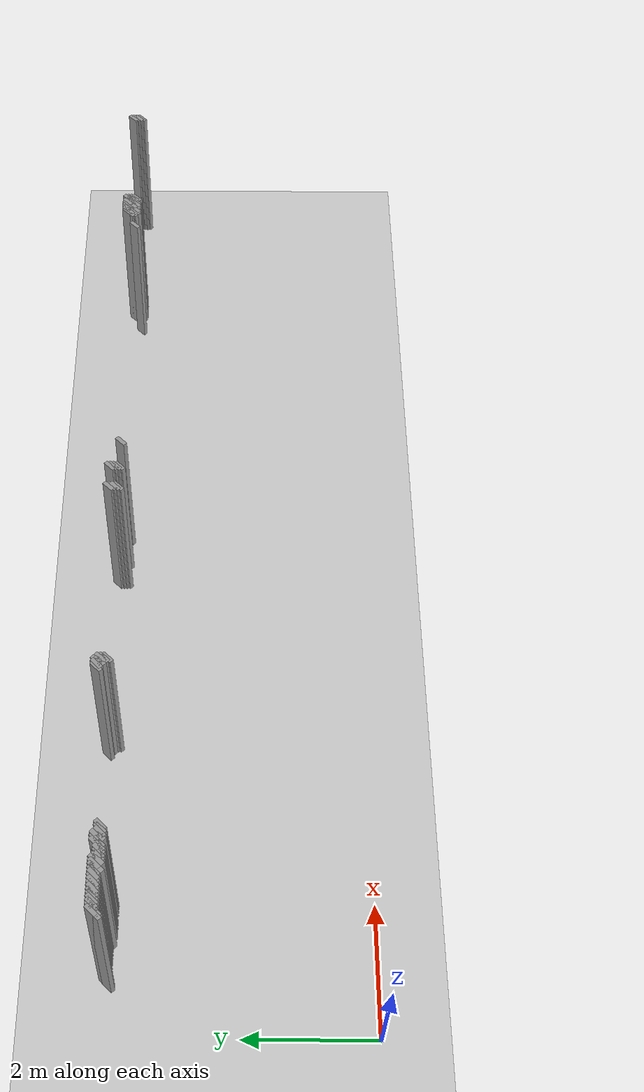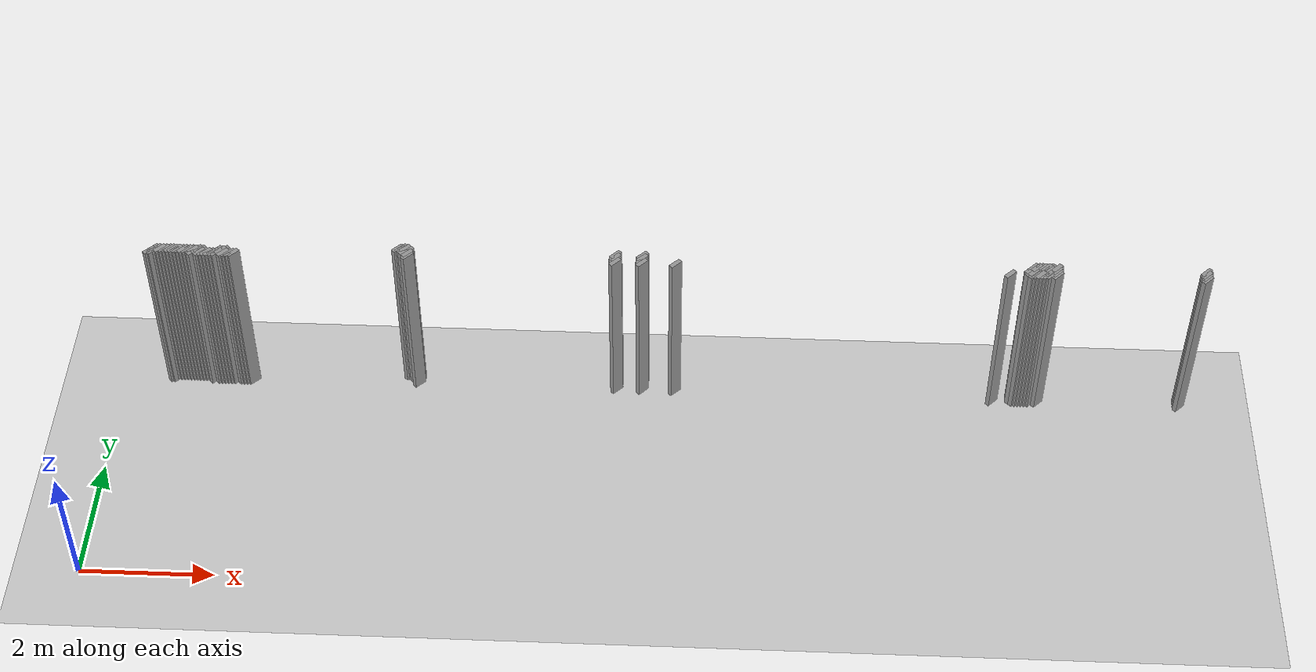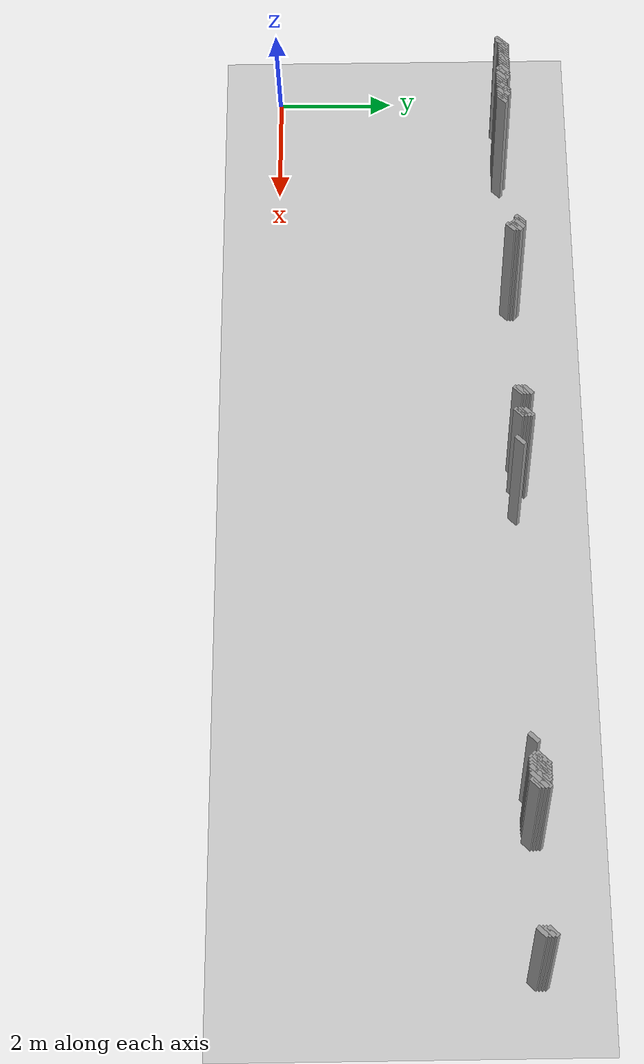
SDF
<sdf version="1.5">
 <world name="default">
  <include><uri>model://ground_plane</uri></include>
  <include><uri>model://sun</uri></include>
  <model name="grey_wall_2147">
   <static>1</static>
   <link name="link">
    <pose>4.45 4.1000000000000005  1.4 0 0 -0.7853981633974483</pose>
    <collision name="collision">
     <geometry><box><size>0.07071067811865576 .2  2.8</size></box></geometry>
    </collision>
    <visual name="visual">
     <cast_shadows>0</cast_shadows>
     <geometry><box><size>0.07071067811865576 .2  2.8</size></box></geometry>
     <material>
      <script>
       <uri>model://grey_wall/materials/scripts</uri>
       <uri>model://grey_wall/materials/textures</uri>
       <name>vrc/grey_wall</name>
      </script>
     </material>
    </visual>
   </link>
  </model>
  <model name="grey_wall_2148">
   <static>1</static>
   <link name="link">
    <pose>4.5 4.1000000000000005  1.4 0 0 -0.7853981633974483</pose>
    <collision name="collision">
     <geometry><box><size>0.07071067811865576 .2  2.8</size></box></geometry>
    </collision>
    <visual name="visual">
     <cast_shadows>0</cast_shadows>
     <geometry><box><size>0.07071067811865576 .2  2.8</size></box></geometry>
     <material>
      <script>
       <uri>model://grey_wall/materials/scripts</uri>
       <uri>model://grey_wall/materials/textures</uri>
       <name>vrc/grey_wall</name>
      </script>
     </material>
    </visual>
   </link>
  </model>
  <model name="grey_wall_2149">
   <static>1</static>
   <link name="link">
    <pose>4.55 4.1000000000000005  1.4 0 0 -0.7853981633974483</pose>
    <collision name="collision">
     <geometry><box><size>0.07071067811865576 .2  2.8</size></box></geometry>
    </collision>
    <visual name="visual">
     <cast_shadows>0</cast_shadows>
     <geometry><box><size>0.07071067811865576 .2  2.8</size></box></geometry>
     <material>
      <script>
       <uri>model://grey_wall/materials/scripts</uri>
       <uri>model://grey_wall/materials/textures</uri>
       <name>vrc/grey_wall</name>
      </script>
     </material>
    </visual>
   </link>
  </model>
  <model name="grey_wall_2150">
   <static>1</static>
   <link name="link">
    <pose>7.7 4.1000000000000005  1.4 0 0 -0.7853981633974483</pose>
    <collision name="collision">
     <geometry><box><size>0.07071067811865576 .2  2.8</size></box></geometry>
    </collision>
    <visual name="visual">
     <cast_shadows>0</cast_shadows>
     <geometry><box><size>0.07071067811865576 .2  2.8</size></box></geometry>
     <material>
      <script>
       <uri>model://grey_wall/materials/scripts</uri>
       <uri>model://grey_wall/materials/textures</uri>
       <name>vrc/grey_wall</name>
      </script>
     </material>
    </visual>
   </link>
  </model>
  <model name="grey_wall_2151">
   <static>1</static>
   <link name="link">
    <pose>8.1 4.1000000000000005  1.4 0 0 -0.7853981633974483</pose>
    <collision name="collision">
     <geometry><box><size>0.07071067811865576 .2  2.8</size></box></geometry>
    </collision>
    <visual name="visual">
     <cast_shadows>0</cast_shadows>
     <geometry><box><size>0.07071067811865576 .2  2.8</size></box></geometry>
     <material>
      <script>
       <uri>model://grey_wall/materials/scripts</uri>
       <uri>model://grey_wall/materials/textures</uri>
       <name>vrc/grey_wall</name>
      </script>
     </material>
    </visual>
   </link>
  </model>
  <model name="grey_wall_2152">
   <static>1</static>
   <link name="link">
    <pose>13.9 4.1000000000000005  1.4 0 0 -0.7853981633974483</pose>
    <collision name="collision">
     <geometry><box><size>0.07071067811865576 .2  2.8</size></box></geometry>
    </collision>
    <visual name="visual">
     <cast_shadows>0</cast_shadows>
     <geometry><box><size>0.07071067811865576 .2  2.8</size></box></geometry>
     <material>
      <script>
       <uri>model://grey_wall/materials/scripts</uri>
       <uri>model://grey_wall/materials/textures</uri>
       <name>vrc/grey_wall</name>
      </script>
     </material>
    </visual>
   </link>
  </model>
  <model name="grey_wall_2153">
   <static>1</static>
   <link name="link">
    <pose>13.950000000000001 4.1000000000000005  1.4 0 0 -0.7853981633974483</pose>
    <collision name="collision">
     <geometry><box><size>0.07071067811865576 .2  2.8</size></box></geometry>
    </collision>
    <visual name="visual">
     <cast_shadows>0</cast_shadows>
     <geometry><box><size>0.07071067811865576 .2  2.8</size></box></geometry>
     <material>
      <script>
       <uri>model://grey_wall/materials/scripts</uri>
       <uri>model://grey_wall/materials/textures</uri>
       <name>vrc/grey_wall</name>
      </script>
     </material>
    </visual>
   </link>
  </model>
  <model name="grey_wall_2154">
   <static>1</static>
   <link name="link">
    <pose>14.0 4.1000000000000005  1.4 0 0 -0.7853981633974483</pose>
    <collision name="collision">
     <geometry><box><size>0.07071067811865576 .2  2.8</size></box></geometry>
    </collision>
    <visual name="visual">
     <cast_shadows>0</cast_shadows>
     <geometry><box><size>0.07071067811865576 .2  2.8</size></box></geometry>
     <material>
      <script>
       <uri>model://grey_wall/materials/scripts</uri>
       <uri>model://grey_wall/materials/textures</uri>
       <name>vrc/grey_wall</name>
      </script>
     </material>
    </visual>
   </link>
  </model>
  <model name="grey_wall_2155">
   <static>1</static>
   <link name="link">
    <pose>14.05 4.1000000000000005  1.4 0 0 -0.7853981633974483</pose>
    <collision name="collision">
     <geometry><box><size>0.07071067811865576 .2  2.8</size></box></geometry>
    </collision>
    <visual name="visual">
     <cast_shadows>0</cast_shadows>
     <geometry><box><size>0.07071067811865576 .2  2.8</size></box></geometry>
     <material>
      <script>
       <uri>model://grey_wall/materials/scripts</uri>
       <uri>model://grey_wall/materials/textures</uri>
       <name>vrc/grey_wall</name>
      </script>
     </material>
    </visual>
   </link>
  </model>
  <model name="grey_wall_2156">
   <static>1</static>
   <link name="link">
    <pose>14.100000000000001 4.1000000000000005  1.4 0 0 -0.7853981633974483</pose>
    <collision name="collision">
     <geometry><box><size>0.07071067811865576 .2  2.8</size></box></geometry>
    </collision>
    <visual name="visual">
     <cast_shadows>0</cast_shadows>
     <geometry><box><size>0.07071067811865576 .2  2.8</size></box></geometry>
     <material>
      <script>
       <uri>model://grey_wall/materials/scripts</uri>
       <uri>model://grey_wall/materials/textures</uri>
       <name>vrc/grey_wall</name>
      </script>
     </material>
    </visual>
   </link>
  </model>
  <model name="grey_wall_2157">
   <static>1</static>
   <link name="link">
    <pose>14.15 4.1000000000000005  1.4 0 0 -0.7853981633974483</pose>
    <collision name="collision">
     <geometry><box><size>0.07071067811865576 .2  2.8</size></box></geometry>
    </collision>
    <visual name="visual">
     <cast_shadows>0</cast_shadows>
     <geometry><box><size>0.07071067811865576 .2  2.8</size></box></geometry>
     <material>
      <script>
       <uri>model://grey_wall/materials/scripts</uri>
       <uri>model://grey_wall/materials/textures</uri>
       <name>vrc/grey_wall</name>
      </script>
     </material>
    </visual>
   </link>
  </model>
  <model name="grey_wall_2158">
   <static>1</static>
   <link name="link">
    <pose>14.25 4.1000000000000005  1.4 0 0 -0.7853981633974483</pose>
    <collision name="collision">
     <geometry><box><size>0.07071067811865576 .2  2.8</size></box></geometry>
    </collision>
    <visual name="visual">
     <cast_shadows>0</cast_shadows>
     <geometry><box><size>0.07071067811865576 .2  2.8</size></box></geometry>
     <material>
      <script>
       <uri>model://grey_wall/materials/scripts</uri>
       <uri>model://grey_wall/materials/textures</uri>
       <name>vrc/grey_wall</name>
      </script>
     </material>
    </visual>
   </link>
  </model>
  <model name="grey_wall_2159">
   <static>1</static>
   <link name="link">
    <pose>16.45 4.1000000000000005  1.4 0 0 -0.7853981633974838</pose>
    <collision name="collision">
     <geometry><box><size>0.07071067811865325 .2  2.8</size></box></geometry>
    </collision>
    <visual name="visual">
     <cast_shadows>0</cast_shadows>
     <geometry><box><size>0.07071067811865325 .2  2.8</size></box></geometry>
     <material>
      <script>
       <uri>model://grey_wall/materials/scripts</uri>
       <uri>model://grey_wall/materials/textures</uri>
       <name>vrc/grey_wall</name>
      </script>
     </material>
    </visual>
   </link>
  </model>
  <model name="grey_wall_2160">
   <static>1</static>
   <link name="link">
    <pose>4.55 4.05  1.4 0 0 -0.7853981633974483</pose>
    <collision name="collision">
     <geometry><box><size>0.07071067811865576 .2  2.8</size></box></geometry>
    </collision>
    <visual name="visual">
     <cast_shadows>0</cast_shadows>
     <geometry><box><size>0.07071067811865576 .2  2.8</size></box></geometry>
     <material>
      <script>
       <uri>model://grey_wall/materials/scripts</uri>
       <uri>model://grey_wall/materials/textures</uri>
       <name>vrc/grey_wall</name>
      </script>
     </material>
    </visual>
   </link>
  </model>
  <model name="grey_wall_2161">
   <static>1</static>
   <link name="link">
    <pose>4.6000000000000005 4.05  1.4 0 0 -0.7853981633974483</pose>
    <collision name="collision">
     <geometry><box><size>0.07071067811865576 .2  2.8</size></box></geometry>
    </collision>
    <visual name="visual">
     <cast_shadows>0</cast_shadows>
     <geometry><box><size>0.07071067811865576 .2  2.8</size></box></geometry>
     <material>
      <script>
       <uri>model://grey_wall/materials/scripts</uri>
       <uri>model://grey_wall/materials/textures</uri>
       <name>vrc/grey_wall</name>
      </script>
     </material>
    </visual>
   </link>
  </model>
  <model name="grey_wall_2162">
   <static>1</static>
   <link name="link">
    <pose>7.7 4.05  1.4 0 0 -0.7853981633974483</pose>
    <collision name="collision">
     <geometry><box><size>0.07071067811865576 .2  2.8</size></box></geometry>
    </collision>
    <visual name="visual">
     <cast_shadows>0</cast_shadows>
     <geometry><box><size>0.07071067811865576 .2  2.8</size></box></geometry>
     <material>
      <script>
       <uri>model://grey_wall/materials/scripts</uri>
       <uri>model://grey_wall/materials/textures</uri>
       <name>vrc/grey_wall</name>
      </script>
     </material>
    </visual>
   </link>
  </model>
  <model name="grey_wall_2163">
   <static>1</static>
   <link name="link">
    <pose>8.1 4.05  1.4 0 0 -0.7853981633974483</pose>
    <collision name="collision">
     <geometry><box><size>0.07071067811865576 .2  2.8</size></box></geometry>
    </collision>
    <visual name="visual">
     <cast_shadows>0</cast_shadows>
     <geometry><box><size>0.07071067811865576 .2  2.8</size></box></geometry>
     <material>
      <script>
       <uri>model://grey_wall/materials/scripts</uri>
       <uri>model://grey_wall/materials/textures</uri>
       <name>vrc/grey_wall</name>
      </script>
     </material>
    </visual>
   </link>
  </model>
  <model name="grey_wall_2164">
   <static>1</static>
   <link name="link">
    <pose>13.850000000000001 4.05  1.4 0 0 -0.7853981633974483</pose>
    <collision name="collision">
     <geometry><box><size>0.07071067811865576 .2  2.8</size></box></geometry>
    </collision>
    <visual name="visual">
     <cast_shadows>0</cast_shadows>
     <geometry><box><size>0.07071067811865576 .2  2.8</size></box></geometry>
     <material>
      <script>
       <uri>model://grey_wall/materials/scripts</uri>
       <uri>model://grey_wall/materials/textures</uri>
       <name>vrc/grey_wall</name>
      </script>
     </material>
    </visual>
   </link>
  </model>
  <model name="grey_wall_2165">
   <static>1</static>
   <link name="link">
    <pose>13.9 4.05  1.4 0 0 -0.7853981633974483</pose>
    <collision name="collision">
     <geometry><box><size>0.07071067811865576 .2  2.8</size></box></geometry>
    </collision>
    <visual name="visual">
     <cast_shadows>0</cast_shadows>
     <geometry><box><size>0.07071067811865576 .2  2.8</size></box></geometry>
     <material>
      <script>
       <uri>model://grey_wall/materials/scripts</uri>
       <uri>model://grey_wall/materials/textures</uri>
       <name>vrc/grey_wall</name>
      </script>
     </material>
    </visual>
   </link>
  </model>
  <model name="grey_wall_2166">
   <static>1</static>
   <link name="link">
    <pose>14.15 4.05  1.4 0 0 -0.7853981633974483</pose>
    <collision name="collision">
     <geometry><box><size>0.07071067811865576 .2  2.8</size></box></geometry>
    </collision>
    <visual name="visual">
     <cast_shadows>0</cast_shadows>
     <geometry><box><size>0.07071067811865576 .2  2.8</size></box></geometry>
     <material>
      <script>
       <uri>model://grey_wall/materials/scripts</uri>
       <uri>model://grey_wall/materials/textures</uri>
       <name>vrc/grey_wall</name>
      </script>
     </material>
    </visual>
   </link>
  </model>
  <model name="grey_wall_2167">
   <static>1</static>
   <link name="link">
    <pose>14.25 4.05  1.4 0 0 -0.7853981633974483</pose>
    <collision name="collision">
     <geometry><box><size>0.07071067811865576 .2  2.8</size></box></geometry>
    </collision>
    <visual name="visual">
     <cast_shadows>0</cast_shadows>
     <geometry><box><size>0.07071067811865576 .2  2.8</size></box></geometry>
     <material>
      <script>
       <uri>model://grey_wall/materials/scripts</uri>
       <uri>model://grey_wall/materials/textures</uri>
       <name>vrc/grey_wall</name>
      </script>
     </material>
    </visual>
   </link>
  </model>
  <model name="grey_wall_2168">
   <static>1</static>
   <link name="link">
    <pose>16.45 4.05  1.4 0 0 -0.7853981633974838</pose>
    <collision name="collision">
     <geometry><box><size>0.07071067811865325 .2  2.8</size></box></geometry>
    </collision>
    <visual name="visual">
     <cast_shadows>0</cast_shadows>
     <geometry><box><size>0.07071067811865325 .2  2.8</size></box></geometry>
     <material>
      <script>
       <uri>model://grey_wall/materials/scripts</uri>
       <uri>model://grey_wall/materials/textures</uri>
       <name>vrc/grey_wall</name>
      </script>
     </material>
    </visual>
   </link>
  </model>
  <model name="grey_wall_2169">
   <static>1</static>
   <link name="link">
    <pose>4.6000000000000005 4.0  1.4 0 0 -0.7853981633974438</pose>
    <collision name="collision">
     <geometry><box><size>0.07071067811865545 .2  2.8</size></box></geometry>
    </collision>
    <visual name="visual">
     <cast_shadows>0</cast_shadows>
     <geometry><box><size>0.07071067811865545 .2  2.8</size></box></geometry>
     <material>
      <script>
       <uri>model://grey_wall/materials/scripts</uri>
       <uri>model://grey_wall/materials/textures</uri>
       <name>vrc/grey_wall</name>
      </script>
     </material>
    </visual>
   </link>
  </model>
  <model name="grey_wall_2170">
   <static>1</static>
   <link name="link">
    <pose>7.7 4.0  1.4 0 0 -0.7853981633974438</pose>
    <collision name="collision">
     <geometry><box><size>0.07071067811865545 .2  2.8</size></box></geometry>
    </collision>
    <visual name="visual">
     <cast_shadows>0</cast_shadows>
     <geometry><box><size>0.07071067811865545 .2  2.8</size></box></geometry>
     <material>
      <script>
       <uri>model://grey_wall/materials/scripts</uri>
       <uri>model://grey_wall/materials/textures</uri>
       <name>vrc/grey_wall</name>
      </script>
     </material>
    </visual>
   </link>
  </model>
  <model name="grey_wall_2171">
   <static>1</static>
   <link name="link">
    <pose>8.1 4.0  1.4 0 0 -0.7853981633974438</pose>
    <collision name="collision">
     <geometry><box><size>0.07071067811865545 .2  2.8</size></box></geometry>
    </collision>
    <visual name="visual">
     <cast_shadows>0</cast_shadows>
     <geometry><box><size>0.07071067811865545 .2  2.8</size></box></geometry>
     <material>
      <script>
       <uri>model://grey_wall/materials/scripts</uri>
       <uri>model://grey_wall/materials/textures</uri>
       <name>vrc/grey_wall</name>
      </script>
     </material>
    </visual>
   </link>
  </model>
  <model name="grey_wall_2172">
   <static>1</static>
   <link name="link">
    <pose>13.850000000000001 4.0  1.4 0 0 -0.7853981633974438</pose>
    <collision name="collision">
     <geometry><box><size>0.07071067811865545 .2  2.8</size></box></geometry>
    </collision>
    <visual name="visual">
     <cast_shadows>0</cast_shadows>
     <geometry><box><size>0.07071067811865545 .2  2.8</size></box></geometry>
     <material>
      <script>
       <uri>model://grey_wall/materials/scripts</uri>
       <uri>model://grey_wall/materials/textures</uri>
       <name>vrc/grey_wall</name>
      </script>
     </material>
    </visual>
   </link>
  </model>
  <model name="grey_wall_2173">
   <static>1</static>
   <link name="link">
    <pose>13.9 4.0  1.4 0 0 -0.7853981633974438</pose>
    <collision name="collision">
     <geometry><box><size>0.07071067811865545 .2  2.8</size></box></geometry>
    </collision>
    <visual name="visual">
     <cast_shadows>0</cast_shadows>
     <geometry><box><size>0.07071067811865545 .2  2.8</size></box></geometry>
     <material>
      <script>
       <uri>model://grey_wall/materials/scripts</uri>
       <uri>model://grey_wall/materials/textures</uri>
       <name>vrc/grey_wall</name>
      </script>
     </material>
    </visual>
   </link>
  </model>
  <model name="grey_wall_2174">
   <static>1</static>
   <link name="link">
    <pose>14.15 4.0  1.4 0 0 -0.7853981633974438</pose>
    <collision name="collision">
     <geometry><box><size>0.07071067811865545 .2  2.8</size></box></geometry>
    </collision>
    <visual name="visual">
     <cast_shadows>0</cast_shadows>
     <geometry><box><size>0.07071067811865545 .2  2.8</size></box></geometry>
     <material>
      <script>
       <uri>model://grey_wall/materials/scripts</uri>
       <uri>model://grey_wall/materials/textures</uri>
       <name>vrc/grey_wall</name>
      </script>
     </material>
    </visual>
   </link>
  </model>
  <model name="grey_wall_2175">
   <static>1</static>
   <link name="link">
    <pose>14.25 4.0  1.4 0 0 -0.7853981633974438</pose>
    <collision name="collision">
     <geometry><box><size>0.07071067811865545 .2  2.8</size></box></geometry>
    </collision>
    <visual name="visual">
     <cast_shadows>0</cast_shadows>
     <geometry><box><size>0.07071067811865545 .2  2.8</size></box></geometry>
     <material>
      <script>
       <uri>model://grey_wall/materials/scripts</uri>
       <uri>model://grey_wall/materials/textures</uri>
       <name>vrc/grey_wall</name>
      </script>
     </material>
    </visual>
   </link>
  </model>
  <model name="grey_wall_2176">
   <static>1</static>
   <link name="link">
    <pose>16.45 4.0  1.4 0 0 -0.7853981633974794</pose>
    <collision name="collision">
     <geometry><box><size>0.07071067811865293 .2  2.8</size></box></geometry>
    </collision>
    <visual name="visual">
     <cast_shadows>0</cast_shadows>
     <geometry><box><size>0.07071067811865293 .2  2.8</size></box></geometry>
     <material>
      <script>
       <uri>model://grey_wall/materials/scripts</uri>
       <uri>model://grey_wall/materials/textures</uri>
       <name>vrc/grey_wall</name>
      </script>
     </material>
    </visual>
   </link>
  </model>
  <model name="grey_wall_2177">
   <static>1</static>
   <link name="link">
    <pose>0.8 3.95  1.4 0 0 -0.7853981633974461</pose>
    <collision name="collision">
     <geometry><box><size>0.07071067811865465 .2  2.8</size></box></geometry>
    </collision>
    <visual name="visual">
     <cast_shadows>0</cast_shadows>
     <geometry><box><size>0.07071067811865465 .2  2.8</size></box></geometry>
     <material>
      <script>
       <uri>model://grey_wall/materials/scripts</uri>
       <uri>model://grey_wall/materials/textures</uri>
       <name>vrc/grey_wall</name>
      </script>
     </material>
    </visual>
   </link>
  </model>
  <model name="grey_wall_2178">
   <static>1</static>
   <link name="link">
    <pose>0.8500000000000001 3.95  1.4 0 0 -0.7853981633974461</pose>
    <collision name="collision">
     <geometry><box><size>0.07071067811865465 .2  2.8</size></box></geometry>
    </collision>
    <visual name="visual">
     <cast_shadows>0</cast_shadows>
     <geometry><box><size>0.07071067811865465 .2  2.8</size></box></geometry>
     <material>
      <script>
       <uri>model://grey_wall/materials/scripts</uri>
       <uri>model://grey_wall/materials/textures</uri>
       <name>vrc/grey_wall</name>
      </script>
     </material>
    </visual>
   </link>
  </model>
  <model name="grey_wall_2179">
   <static>1</static>
   <link name="link">
    <pose>0.9 3.95  1.4 0 0 -0.7853981633974461</pose>
    <collision name="collision">
     <geometry><box><size>0.07071067811865465 .2  2.8</size></box></geometry>
    </collision>
    <visual name="visual">
     <cast_shadows>0</cast_shadows>
     <geometry><box><size>0.07071067811865465 .2  2.8</size></box></geometry>
     <material>
      <script>
       <uri>model://grey_wall/materials/scripts</uri>
       <uri>model://grey_wall/materials/textures</uri>
       <name>vrc/grey_wall</name>
      </script>
     </material>
    </visual>
   </link>
  </model>
  <model name="grey_wall_2180">
   <static>1</static>
   <link name="link">
    <pose>0.9500000000000001 3.95  1.4 0 0 -0.7853981633974461</pose>
    <collision name="collision">
     <geometry><box><size>0.07071067811865465 .2  2.8</size></box></geometry>
    </collision>
    <visual name="visual">
     <cast_shadows>0</cast_shadows>
     <geometry><box><size>0.07071067811865465 .2  2.8</size></box></geometry>
     <material>
      <script>
       <uri>model://grey_wall/materials/scripts</uri>
       <uri>model://grey_wall/materials/textures</uri>
       <name>vrc/grey_wall</name>
      </script>
     </material>
    </visual>
   </link>
  </model>
  <model name="grey_wall_2181">
   <static>1</static>
   <link name="link">
    <pose>1.0 3.95  1.4 0 0 -0.7853981633974472</pose>
    <collision name="collision">
     <geometry><box><size>0.07071067811865459 .2  2.8</size></box></geometry>
    </collision>
    <visual name="visual">
     <cast_shadows>0</cast_shadows>
     <geometry><box><size>0.07071067811865459 .2  2.8</size></box></geometry>
     <material>
      <script>
       <uri>model://grey_wall/materials/scripts</uri>
       <uri>model://grey_wall/materials/textures</uri>
       <name>vrc/grey_wall</name>
      </script>
     </material>
    </visual>
   </link>
  </model>
  <model name="grey_wall_2182">
   <static>1</static>
   <link name="link">
    <pose>1.05 3.95  1.4 0 0 -0.7853981633974483</pose>
    <collision name="collision">
     <geometry><box><size>0.0707106781186545 .2  2.8</size></box></geometry>
    </collision>
    <visual name="visual">
     <cast_shadows>0</cast_shadows>
     <geometry><box><size>0.0707106781186545 .2  2.8</size></box></geometry>
     <material>
      <script>
       <uri>model://grey_wall/materials/scripts</uri>
       <uri>model://grey_wall/materials/textures</uri>
       <name>vrc/grey_wall</name>
      </script>
     </material>
    </visual>
   </link>
  </model>
  <model name="grey_wall_2183">
   <static>1</static>
   <link name="link">
    <pose>1.1 3.95  1.4 0 0 -0.7853981633974483</pose>
    <collision name="collision">
     <geometry><box><size>0.0707106781186545 .2  2.8</size></box></geometry>
    </collision>
    <visual name="visual">
     <cast_shadows>0</cast_shadows>
     <geometry><box><size>0.0707106781186545 .2  2.8</size></box></geometry>
     <material>
      <script>
       <uri>model://grey_wall/materials/scripts</uri>
       <uri>model://grey_wall/materials/textures</uri>
       <name>vrc/grey_wall</name>
      </script>
     </material>
    </visual>
   </link>
  </model>
  <model name="grey_wall_2184">
   <static>1</static>
   <link name="link">
    <pose>1.1500000000000001 3.95  1.4 0 0 -0.7853981633974483</pose>
    <collision name="collision">
     <geometry><box><size>0.0707106781186545 .2  2.8</size></box></geometry>
    </collision>
    <visual name="visual">
     <cast_shadows>0</cast_shadows>
     <geometry><box><size>0.0707106781186545 .2  2.8</size></box></geometry>
     <material>
      <script>
       <uri>model://grey_wall/materials/scripts</uri>
       <uri>model://grey_wall/materials/textures</uri>
       <name>vrc/grey_wall</name>
      </script>
     </material>
    </visual>
   </link>
  </model>
  <model name="grey_wall_2185">
   <static>1</static>
   <link name="link">
    <pose>1.2000000000000002 3.95  1.4 0 0 -0.7853981633974483</pose>
    <collision name="collision">
     <geometry><box><size>0.0707106781186545 .2  2.8</size></box></geometry>
    </collision>
    <visual name="visual">
     <cast_shadows>0</cast_shadows>
     <geometry><box><size>0.0707106781186545 .2  2.8</size></box></geometry>
     <material>
      <script>
       <uri>model://grey_wall/materials/scripts</uri>
       <uri>model://grey_wall/materials/textures</uri>
       <name>vrc/grey_wall</name>
      </script>
     </material>
    </visual>
   </link>
  </model>
  <model name="grey_wall_2186">
   <static>1</static>
   <link name="link">
    <pose>1.25 3.95  1.4 0 0 -0.7853981633974483</pose>
    <collision name="collision">
     <geometry><box><size>0.0707106781186545 .2  2.8</size></box></geometry>
    </collision>
    <visual name="visual">
     <cast_shadows>0</cast_shadows>
     <geometry><box><size>0.0707106781186545 .2  2.8</size></box></geometry>
     <material>
      <script>
       <uri>model://grey_wall/materials/scripts</uri>
       <uri>model://grey_wall/materials/textures</uri>
       <name>vrc/grey_wall</name>
      </script>
     </material>
    </visual>
   </link>
  </model>
  <model name="grey_wall_2187">
   <static>1</static>
   <link name="link">
    <pose>1.3 3.95  1.4 0 0 -0.7853981633974483</pose>
    <collision name="collision">
     <geometry><box><size>0.0707106781186545 .2  2.8</size></box></geometry>
    </collision>
    <visual name="visual">
     <cast_shadows>0</cast_shadows>
     <geometry><box><size>0.0707106781186545 .2  2.8</size></box></geometry>
     <material>
      <script>
       <uri>model://grey_wall/materials/scripts</uri>
       <uri>model://grey_wall/materials/textures</uri>
       <name>vrc/grey_wall</name>
      </script>
     </material>
    </visual>
   </link>
  </model>
  <model name="grey_wall_2188">
   <static>1</static>
   <link name="link">
    <pose>1.35 3.95  1.4 0 0 -0.7853981633974483</pose>
    <collision name="collision">
     <geometry><box><size>0.0707106781186545 .2  2.8</size></box></geometry>
    </collision>
    <visual name="visual">
     <cast_shadows>0</cast_shadows>
     <geometry><box><size>0.0707106781186545 .2  2.8</size></box></geometry>
     <material>
      <script>
       <uri>model://grey_wall/materials/scripts</uri>
       <uri>model://grey_wall/materials/textures</uri>
       <name>vrc/grey_wall</name>
      </script>
     </material>
    </visual>
   </link>
  </model>
  <model name="grey_wall_2189">
   <static>1</static>
   <link name="link">
    <pose>1.4000000000000001 3.95  1.4 0 0 -0.7853981633974483</pose>
    <collision name="collision">
     <geometry><box><size>0.0707106781186545 .2  2.8</size></box></geometry>
    </collision>
    <visual name="visual">
     <cast_shadows>0</cast_shadows>
     <geometry><box><size>0.0707106781186545 .2  2.8</size></box></geometry>
     <material>
      <script>
       <uri>model://grey_wall/materials/scripts</uri>
       <uri>model://grey_wall/materials/textures</uri>
       <name>vrc/grey_wall</name>
      </script>
     </material>
    </visual>
   </link>
  </model>
  <model name="grey_wall_2190">
   <static>1</static>
   <link name="link">
    <pose>1.4500000000000002 3.95  1.4 0 0 -0.7853981633974483</pose>
    <collision name="collision">
     <geometry><box><size>0.0707106781186545 .2  2.8</size></box></geometry>
    </collision>
    <visual name="visual">
     <cast_shadows>0</cast_shadows>
     <geometry><box><size>0.0707106781186545 .2  2.8</size></box></geometry>
     <material>
      <script>
       <uri>model://grey_wall/materials/scripts</uri>
       <uri>model://grey_wall/materials/textures</uri>
       <name>vrc/grey_wall</name>
      </script>
     </material>
    </visual>
   </link>
  </model>
  <model name="grey_wall_2191">
   <static>1</static>
   <link name="link">
    <pose>1.5 3.95  1.4 0 0 -0.7853981633974483</pose>
    <collision name="collision">
     <geometry><box><size>0.0707106781186545 .2  2.8</size></box></geometry>
    </collision>
    <visual name="visual">
     <cast_shadows>0</cast_shadows>
     <geometry><box><size>0.0707106781186545 .2  2.8</size></box></geometry>
     <material>
      <script>
       <uri>model://grey_wall/materials/scripts</uri>
       <uri>model://grey_wall/materials/textures</uri>
       <name>vrc/grey_wall</name>
      </script>
     </material>
    </visual>
   </link>
  </model>
  <model name="grey_wall_2192">
   <static>1</static>
   <link name="link">
    <pose>1.75 3.95  1.4 0 0 -0.7853981633974483</pose>
    <collision name="collision">
     <geometry><box><size>0.0707106781186545 .2  2.8</size></box></geometry>
    </collision>
    <visual name="visual">
     <cast_shadows>0</cast_shadows>
     <geometry><box><size>0.0707106781186545 .2  2.8</size></box></geometry>
     <material>
      <script>
       <uri>model://grey_wall/materials/scripts</uri>
       <uri>model://grey_wall/materials/textures</uri>
       <name>vrc/grey_wall</name>
      </script>
     </material>
    </visual>
   </link>
  </model>
  <model name="grey_wall_2193">
   <static>1</static>
   <link name="link">
    <pose>1.8 3.95  1.4 0 0 -0.7853981633974483</pose>
    <collision name="collision">
     <geometry><box><size>0.0707106781186545 .2  2.8</size></box></geometry>
    </collision>
    <visual name="visual">
     <cast_shadows>0</cast_shadows>
     <geometry><box><size>0.0707106781186545 .2  2.8</size></box></geometry>
     <material>
      <script>
       <uri>model://grey_wall/materials/scripts</uri>
       <uri>model://grey_wall/materials/textures</uri>
       <name>vrc/grey_wall</name>
      </script>
     </material>
    </visual>
   </link>
  </model>
  <model name="grey_wall_2194">
   <static>1</static>
   <link name="link">
    <pose>1.85 3.95  1.4 0 0 -0.7853981633974483</pose>
    <collision name="collision">
     <geometry><box><size>0.0707106781186545 .2  2.8</size></box></geometry>
    </collision>
    <visual name="visual">
     <cast_shadows>0</cast_shadows>
     <geometry><box><size>0.0707106781186545 .2  2.8</size></box></geometry>
     <material>
      <script>
       <uri>model://grey_wall/materials/scripts</uri>
       <uri>model://grey_wall/materials/textures</uri>
       <name>vrc/grey_wall</name>
      </script>
     </material>
    </visual>
   </link>
  </model>
  <model name="grey_wall_2195">
   <static>1</static>
   <link name="link">
    <pose>4.6000000000000005 3.95  1.4 0 0 -0.7853981633974394</pose>
    <collision name="collision">
     <geometry><box><size>0.07071067811865513 .2  2.8</size></box></geometry>
    </collision>
    <visual name="visual">
     <cast_shadows>0</cast_shadows>
     <geometry><box><size>0.07071067811865513 .2  2.8</size></box></geometry>
     <material>
      <script>
       <uri>model://grey_wall/materials/scripts</uri>
       <uri>model://grey_wall/materials/textures</uri>
       <name>vrc/grey_wall</name>
      </script>
     </material>
    </visual>
   </link>
  </model>
  <model name="grey_wall_2196">
   <static>1</static>
   <link name="link">
    <pose>7.7 3.95  1.4 0 0 -0.7853981633974394</pose>
    <collision name="collision">
     <geometry><box><size>0.07071067811865513 .2  2.8</size></box></geometry>
    </collision>
    <visual name="visual">
     <cast_shadows>0</cast_shadows>
     <geometry><box><size>0.07071067811865513 .2  2.8</size></box></geometry>
     <material>
      <script>
       <uri>model://grey_wall/materials/scripts</uri>
       <uri>model://grey_wall/materials/textures</uri>
       <name>vrc/grey_wall</name>
      </script>
     </material>
    </visual>
   </link>
  </model>
  <model name="grey_wall_2197">
   <static>1</static>
   <link name="link">
    <pose>8.1 3.95  1.4 0 0 -0.7853981633974394</pose>
    <collision name="collision">
     <geometry><box><size>0.07071067811865513 .2  2.8</size></box></geometry>
    </collision>
    <visual name="visual">
     <cast_shadows>0</cast_shadows>
     <geometry><box><size>0.07071067811865513 .2  2.8</size></box></geometry>
     <material>
      <script>
       <uri>model://grey_wall/materials/scripts</uri>
       <uri>model://grey_wall/materials/textures</uri>
       <name>vrc/grey_wall</name>
      </script>
     </material>
    </visual>
   </link>
  </model>
  <model name="grey_wall_2198">
   <static>1</static>
   <link name="link">
    <pose>8.6 3.95  1.4 0 0 -0.7853981633974394</pose>
    <collision name="collision">
     <geometry><box><size>0.07071067811865513 .2  2.8</size></box></geometry>
    </collision>
    <visual name="visual">
     <cast_shadows>0</cast_shadows>
     <geometry><box><size>0.07071067811865513 .2  2.8</size></box></geometry>
     <material>
      <script>
       <uri>model://grey_wall/materials/scripts</uri>
       <uri>model://grey_wall/materials/textures</uri>
       <name>vrc/grey_wall</name>
      </script>
     </material>
    </visual>
   </link>
  </model>
  <model name="grey_wall_2199">
   <static>1</static>
   <link name="link">
    <pose>13.55 3.95  1.4 0 0 -0.7853981633974394</pose>
    <collision name="collision">
     <geometry><box><size>0.07071067811865513 .2  2.8</size></box></geometry>
    </collision>
    <visual name="visual">
     <cast_shadows>0</cast_shadows>
     <geometry><box><size>0.07071067811865513 .2  2.8</size></box></geometry>
     <material>
      <script>
       <uri>model://grey_wall/materials/scripts</uri>
       <uri>model://grey_wall/materials/textures</uri>
       <name>vrc/grey_wall</name>
      </script>
     </material>
    </visual>
   </link>
  </model>
  <model name="grey_wall_2200">
   <static>1</static>
   <link name="link">
    <pose>13.9 3.95  1.4 0 0 -0.7853981633974394</pose>
    <collision name="collision">
     <geometry><box><size>0.07071067811865513 .2  2.8</size></box></geometry>
    </collision>
    <visual name="visual">
     <cast_shadows>0</cast_shadows>
     <geometry><box><size>0.07071067811865513 .2  2.8</size></box></geometry>
     <material>
      <script>
       <uri>model://grey_wall/materials/scripts</uri>
       <uri>model://grey_wall/materials/textures</uri>
       <name>vrc/grey_wall</name>
      </script>
     </material>
    </visual>
   </link>
  </model>
  <model name="grey_wall_2201">
   <static>1</static>
   <link name="link">
    <pose>13.950000000000001 3.95  1.4 0 0 -0.7853981633974394</pose>
    <collision name="collision">
     <geometry><box><size>0.07071067811865513 .2  2.8</size></box></geometry>
    </collision>
    <visual name="visual">
     <cast_shadows>0</cast_shadows>
     <geometry><box><size>0.07071067811865513 .2  2.8</size></box></geometry>
     <material>
      <script>
       <uri>model://grey_wall/materials/scripts</uri>
       <uri>model://grey_wall/materials/textures</uri>
       <name>vrc/grey_wall</name>
      </script>
     </material>
    </visual>
   </link>
  </model>
  <model name="grey_wall_2202">
   <static>1</static>
   <link name="link">
    <pose>14.0 3.95  1.4 0 0 -0.7853981633974394</pose>
    <collision name="collision">
     <geometry><box><size>0.07071067811865513 .2  2.8</size></box></geometry>
    </collision>
    <visual name="visual">
     <cast_shadows>0</cast_shadows>
     <geometry><box><size>0.07071067811865513 .2  2.8</size></box></geometry>
     <material>
      <script>
       <uri>model://grey_wall/materials/scripts</uri>
       <uri>model://grey_wall/materials/textures</uri>
       <name>vrc/grey_wall</name>
      </script>
     </material>
    </visual>
   </link>
  </model>
  <model name="grey_wall_2203">
   <static>1</static>
   <link name="link">
    <pose>14.05 3.95  1.4 0 0 -0.7853981633974394</pose>
    <collision name="collision">
     <geometry><box><size>0.07071067811865513 .2  2.8</size></box></geometry>
    </collision>
    <visual name="visual">
     <cast_shadows>0</cast_shadows>
     <geometry><box><size>0.07071067811865513 .2  2.8</size></box></geometry>
     <material>
      <script>
       <uri>model://grey_wall/materials/scripts</uri>
       <uri>model://grey_wall/materials/textures</uri>
       <name>vrc/grey_wall</name>
      </script>
     </material>
    </visual>
   </link>
  </model>
  <model name="grey_wall_2204">
   <static>1</static>
   <link name="link">
    <pose>14.100000000000001 3.95  1.4 0 0 -0.7853981633974394</pose>
    <collision name="collision">
     <geometry><box><size>0.07071067811865513 .2  2.8</size></box></geometry>
    </collision>
    <visual name="visual">
     <cast_shadows>0</cast_shadows>
     <geometry><box><size>0.07071067811865513 .2  2.8</size></box></geometry>
     <material>
      <script>
       <uri>model://grey_wall/materials/scripts</uri>
       <uri>model://grey_wall/materials/textures</uri>
       <name>vrc/grey_wall</name>
      </script>
     </material>
    </visual>
   </link>
  </model>
  <model name="grey_wall_2205">
   <static>1</static>
   <link name="link">
    <pose>14.15 3.95  1.4 0 0 -0.7853981633974394</pose>
    <collision name="collision">
     <geometry><box><size>0.07071067811865513 .2  2.8</size></box></geometry>
    </collision>
    <visual name="visual">
     <cast_shadows>0</cast_shadows>
     <geometry><box><size>0.07071067811865513 .2  2.8</size></box></geometry>
     <material>
      <script>
       <uri>model://grey_wall/materials/scripts</uri>
       <uri>model://grey_wall/materials/textures</uri>
       <name>vrc/grey_wall</name>
      </script>
     </material>
    </visual>
   </link>
  </model>
  <model name="grey_wall_2206">
   <static>1</static>
   <link name="link">
    <pose>14.25 3.95  1.4 0 0 -0.7853981633974394</pose>
    <collision name="collision">
     <geometry><box><size>0.07071067811865513 .2  2.8</size></box></geometry>
    </collision>
    <visual name="visual">
     <cast_shadows>0</cast_shadows>
     <geometry><box><size>0.07071067811865513 .2  2.8</size></box></geometry>
     <material>
      <script>
       <uri>model://grey_wall/materials/scripts</uri>
       <uri>model://grey_wall/materials/textures</uri>
       <name>vrc/grey_wall</name>
      </script>
     </material>
    </visual>
   </link>
  </model>
  <model name="grey_wall_2207">
   <static>1</static>
   <link name="link">
    <pose>16.45 3.95  1.4 0 0 -0.7853981633974749</pose>
    <collision name="collision">
     <geometry><box><size>0.07071067811865261 .2  2.8</size></box></geometry>
    </collision>
    <visual name="visual">
     <cast_shadows>0</cast_shadows>
     <geometry><box><size>0.07071067811865261 .2  2.8</size></box></geometry>
     <material>
      <script>
       <uri>model://grey_wall/materials/scripts</uri>
       <uri>model://grey_wall/materials/textures</uri>
       <name>vrc/grey_wall</name>
      </script>
     </material>
    </visual>
   </link>
  </model>
  <model name="grey_wall_2208">
   <static>1</static>
   <link name="link">
    <pose>0.75 3.9000000000000004  1.4 0 0 -0.7853981633974461</pose>
    <collision name="collision">
     <geometry><box><size>0.07071067811865465 .2  2.8</size></box></geometry>
    </collision>
    <visual name="visual">
     <cast_shadows>0</cast_shadows>
     <geometry><box><size>0.07071067811865465 .2  2.8</size></box></geometry>
     <material>
      <script>
       <uri>model://grey_wall/materials/scripts</uri>
       <uri>model://grey_wall/materials/textures</uri>
       <name>vrc/grey_wall</name>
      </script>
     </material>
    </visual>
   </link>
  </model>
  <model name="grey_wall_2209">
   <static>1</static>
   <link name="link">
    <pose>0.8 3.9000000000000004  1.4 0 0 -0.7853981633974461</pose>
    <collision name="collision">
     <geometry><box><size>0.07071067811865465 .2  2.8</size></box></geometry>
    </collision>
    <visual name="visual">
     <cast_shadows>0</cast_shadows>
     <geometry><box><size>0.07071067811865465 .2  2.8</size></box></geometry>
     <material>
      <script>
       <uri>model://grey_wall/materials/scripts</uri>
       <uri>model://grey_wall/materials/textures</uri>
       <name>vrc/grey_wall</name>
      </script>
     </material>
    </visual>
   </link>
  </model>
  <model name="grey_wall_2210">
   <static>1</static>
   <link name="link">
    <pose>1.4000000000000001 3.9000000000000004  1.4 0 0 -0.7853981633974483</pose>
    <collision name="collision">
     <geometry><box><size>0.0707106781186545 .2  2.8</size></box></geometry>
    </collision>
    <visual name="visual">
     <cast_shadows>0</cast_shadows>
     <geometry><box><size>0.0707106781186545 .2  2.8</size></box></geometry>
     <material>
      <script>
       <uri>model://grey_wall/materials/scripts</uri>
       <uri>model://grey_wall/materials/textures</uri>
       <name>vrc/grey_wall</name>
      </script>
     </material>
    </visual>
   </link>
  </model>
  <model name="grey_wall_2211">
   <static>1</static>
   <link name="link">
    <pose>1.5 3.9000000000000004  1.4 0 0 -0.7853981633974483</pose>
    <collision name="collision">
     <geometry><box><size>0.0707106781186545 .2  2.8</size></box></geometry>
    </collision>
    <visual name="visual">
     <cast_shadows>0</cast_shadows>
     <geometry><box><size>0.0707106781186545 .2  2.8</size></box></geometry>
     <material>
      <script>
       <uri>model://grey_wall/materials/scripts</uri>
       <uri>model://grey_wall/materials/textures</uri>
       <name>vrc/grey_wall</name>
      </script>
     </material>
    </visual>
   </link>
  </model>
  <model name="grey_wall_2212">
   <static>1</static>
   <link name="link">
    <pose>1.55 3.9000000000000004  1.4 0 0 -0.7853981633974483</pose>
    <collision name="collision">
     <geometry><box><size>0.0707106781186545 .2  2.8</size></box></geometry>
    </collision>
    <visual name="visual">
     <cast_shadows>0</cast_shadows>
     <geometry><box><size>0.0707106781186545 .2  2.8</size></box></geometry>
     <material>
      <script>
       <uri>model://grey_wall/materials/scripts</uri>
       <uri>model://grey_wall/materials/textures</uri>
       <name>vrc/grey_wall</name>
      </script>
     </material>
    </visual>
   </link>
  </model>
  <model name="grey_wall_2213">
   <static>1</static>
   <link name="link">
    <pose>1.6 3.9000000000000004  1.4 0 0 -0.7853981633974483</pose>
    <collision name="collision">
     <geometry><box><size>0.0707106781186545 .2  2.8</size></box></geometry>
    </collision>
    <visual name="visual">
     <cast_shadows>0</cast_shadows>
     <geometry><box><size>0.0707106781186545 .2  2.8</size></box></geometry>
     <material>
      <script>
       <uri>model://grey_wall/materials/scripts</uri>
       <uri>model://grey_wall/materials/textures</uri>
       <name>vrc/grey_wall</name>
      </script>
     </material>
    </visual>
   </link>
  </model>
  <model name="grey_wall_2214">
   <static>1</static>
   <link name="link">
    <pose>1.6500000000000001 3.9000000000000004  1.4 0 0 -0.7853981633974483</pose>
    <collision name="collision">
     <geometry><box><size>0.0707106781186545 .2  2.8</size></box></geometry>
    </collision>
    <visual name="visual">
     <cast_shadows>0</cast_shadows>
     <geometry><box><size>0.0707106781186545 .2  2.8</size></box></geometry>
     <material>
      <script>
       <uri>model://grey_wall/materials/scripts</uri>
       <uri>model://grey_wall/materials/textures</uri>
       <name>vrc/grey_wall</name>
      </script>
     </material>
    </visual>
   </link>
  </model>
  <model name="grey_wall_2215">
   <static>1</static>
   <link name="link">
    <pose>1.7000000000000002 3.9000000000000004  1.4 0 0 -0.7853981633974483</pose>
    <collision name="collision">
     <geometry><box><size>0.0707106781186545 .2  2.8</size></box></geometry>
    </collision>
    <visual name="visual">
     <cast_shadows>0</cast_shadows>
     <geometry><box><size>0.0707106781186545 .2  2.8</size></box></geometry>
     <material>
      <script>
       <uri>model://grey_wall/materials/scripts</uri>
       <uri>model://grey_wall/materials/textures</uri>
       <name>vrc/grey_wall</name>
      </script>
     </material>
    </visual>
   </link>
  </model>
  <model name="grey_wall_2216">
   <static>1</static>
   <link name="link">
    <pose>1.75 3.9000000000000004  1.4 0 0 -0.7853981633974483</pose>
    <collision name="collision">
     <geometry><box><size>0.0707106781186545 .2  2.8</size></box></geometry>
    </collision>
    <visual name="visual">
     <cast_shadows>0</cast_shadows>
     <geometry><box><size>0.0707106781186545 .2  2.8</size></box></geometry>
     <material>
      <script>
       <uri>model://grey_wall/materials/scripts</uri>
       <uri>model://grey_wall/materials/textures</uri>
       <name>vrc/grey_wall</name>
      </script>
     </material>
    </visual>
   </link>
  </model>
  <model name="grey_wall_2217">
   <static>1</static>
   <link name="link">
    <pose>1.85 3.9000000000000004  1.4 0 0 -0.7853981633974483</pose>
    <collision name="collision">
     <geometry><box><size>0.0707106781186545 .2  2.8</size></box></geometry>
    </collision>
    <visual name="visual">
     <cast_shadows>0</cast_shadows>
     <geometry><box><size>0.0707106781186545 .2  2.8</size></box></geometry>
     <material>
      <script>
       <uri>model://grey_wall/materials/scripts</uri>
       <uri>model://grey_wall/materials/textures</uri>
       <name>vrc/grey_wall</name>
      </script>
     </material>
    </visual>
   </link>
  </model>
  <model name="grey_wall_2218">
   <static>1</static>
   <link name="link">
    <pose>1.9000000000000001 3.9000000000000004  1.4 0 0 -0.7853981633974483</pose>
    <collision name="collision">
     <geometry><box><size>0.0707106781186545 .2  2.8</size></box></geometry>
    </collision>
    <visual name="visual">
     <cast_shadows>0</cast_shadows>
     <geometry><box><size>0.0707106781186545 .2  2.8</size></box></geometry>
     <material>
      <script>
       <uri>model://grey_wall/materials/scripts</uri>
       <uri>model://grey_wall/materials/textures</uri>
       <name>vrc/grey_wall</name>
      </script>
     </material>
    </visual>
   </link>
  </model>
  <model name="grey_wall_2219">
   <static>1</static>
   <link name="link">
    <pose>1.9500000000000002 3.9000000000000004  1.4 0 0 -0.7853981633974483</pose>
    <collision name="collision">
     <geometry><box><size>0.0707106781186545 .2  2.8</size></box></geometry>
    </collision>
    <visual name="visual">
     <cast_shadows>0</cast_shadows>
     <geometry><box><size>0.0707106781186545 .2  2.8</size></box></geometry>
     <material>
      <script>
       <uri>model://grey_wall/materials/scripts</uri>
       <uri>model://grey_wall/materials/textures</uri>
       <name>vrc/grey_wall</name>
      </script>
     </material>
    </visual>
   </link>
  </model>
  <model name="grey_wall_2220">
   <static>1</static>
   <link name="link">
    <pose>2.0 3.9000000000000004  1.4 0 0 -0.7853981633974483</pose>
    <collision name="collision">
     <geometry><box><size>0.0707106781186545 .2  2.8</size></box></geometry>
    </collision>
    <visual name="visual">
     <cast_shadows>0</cast_shadows>
     <geometry><box><size>0.0707106781186545 .2  2.8</size></box></geometry>
     <material>
      <script>
       <uri>model://grey_wall/materials/scripts</uri>
       <uri>model://grey_wall/materials/textures</uri>
       <name>vrc/grey_wall</name>
      </script>
     </material>
    </visual>
   </link>
  </model>
 </world>
</sdf>
